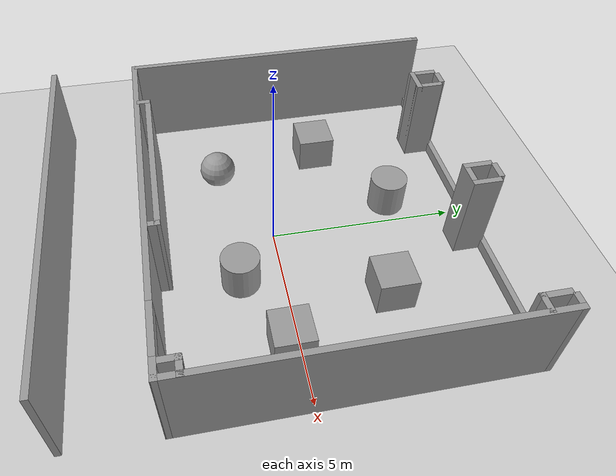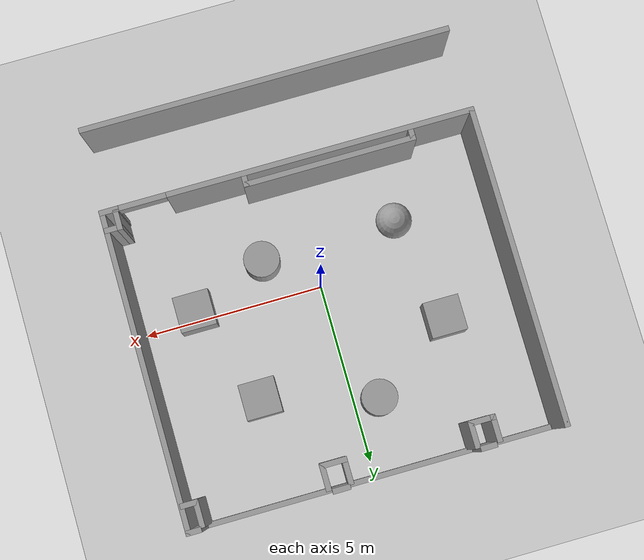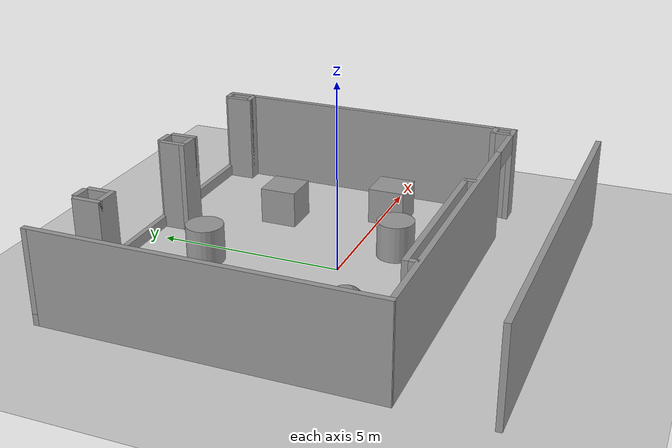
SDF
<sdf version="1.7">
 <world name="default">
  <light name="sun" type="directional">
   <pose>0 0 10 0 -0 0</pose>
   <diffuse>0.8 0.8 0.8 1</diffuse>
   <specular>0.2 0.2 0.2 1</specular>
   <attenuation>
    <range>1000</range>
    <constant>0.9</constant>
    <linear>0.01</linear>
    <quadratic>0.001</quadratic>
   </attenuation>
   <direction>-0.5 0.1 -0.9</direction>
   <spot><inner_angle>0</inner_angle><outer_angle>0</outer_angle><falloff>0</falloff></spot>
  </light>
  <model name="ground_plane">
   <static>1</static>
   <link name="link">
    <collision name="collision">
     <geometry><plane><normal>0 0 1</normal><size>100 100</size></plane></geometry>
     <surface>
      <contact><collide_bitmask>65535</collide_bitmask></contact>
      <friction><ode><mu>100</mu><mu2>50</mu2></ode></friction>
     </surface>
    </collision>
    <visual name="visual">
     <cast_shadows>0</cast_shadows>
     <geometry><plane><normal>0 0 1</normal><size>100 100</size></plane></geometry>
     <material>
      <script><uri>file://media/materials/scripts/gazebo.material</uri><name>Gazebo/Grey</name></script>
     </material>
    </visual>
   </link>
  </model>
  <gravity>0 0 -9.8</gravity>
  <magnetic_field>6e-06 2.3e-05 -4.2e-05</magnetic_field>
  <atmosphere type="adiabatic"/>
  <physics type="ode">
   <max_step_size>0.001</max_step_size>
   <real_time_factor>1</real_time_factor>
   <real_time_update_rate>1000</real_time_update_rate>
  </physics>
  <scene><ambient>0.4 0.4 0.4 1</ambient><background>0.7 0.7 0.7 1</background><shadows>1</shadows></scene>
  <spherical_coordinates>
   <surface_model>EARTH_WGS84</surface_model>
   <latitude_deg>0</latitude_deg>
   <longitude_deg>0</longitude_deg>
   <elevation>0</elevation>
   <heading_deg>0</heading_deg>
  </spherical_coordinates>
  <model name="labmap">
   <link name="Wall_21">
    <pose>-5.08606 1.15108 0 0 0 -1.5708</pose>
    <visual name="Wall_21_Visual">
     <pose>0 0 1.25 0 -0 0</pose>
     <geometry><box><size>8.81401 0.15 2.5</size></box></geometry>
     <material>
      <script><uri>file://media/materials/scripts/gazebo.material</uri><name>Gazebo/Grey</name></script>
      <ambient>1 1 1 1</ambient>
      <shader type="pixel"/>
     </material>
     <meta><layer>0</layer></meta>
    </visual>
    <collision name="Wall_21_Collision">
     <pose>0 0 1.25 0 -0 0</pose>
     <geometry><box><size>8.81401 0.15 2.5</size></box></geometry>
     <surface>
      <friction>
       <ode><mu>1</mu><mu2>1</mu2><fdir1>0 0 0</fdir1><slip1>0</slip1><slip2>0</slip2></ode>
       <torsional>
        <coefficient>1</coefficient>
        <patch_radius>0</patch_radius>
        <surface_radius>0</surface_radius>
        <use_patch_radius>1</use_patch_radius>
        <ode><slip>0</slip></ode>
       </torsional>
      </friction>
      <bounce><restitution_coefficient>0</restitution_coefficient><threshold>1e+06</threshold></bounce>
      <contact>
       <collide_without_contact>0</collide_without_contact>
       <collide_without_contact_bitmask>1</collide_without_contact_bitmask>
       <collide_bitmask>1</collide_bitmask>
       <ode>
        <soft_cfm>0</soft_cfm>
        <soft_erp>0.2</soft_erp>
        <kp>1e+13</kp>
        <kd>1</kd>
        <max_vel>0.01</max_vel>
        <min_depth>0</min_depth>
       </ode>
       <bullet>
        <split_impulse>1</split_impulse>
        <split_impulse_penetration_threshold>-0.01</split_impulse_penetration_threshold>
        <soft_cfm>0</soft_cfm>
        <soft_erp>0.2</soft_erp>
        <kp>1e+13</kp>
        <kd>1</kd>
       </bullet>
      </contact>
     </surface>
    </collision>
   </link>
   <link name="Wall_22">
    <pose>5.8e-05 -3.182 0 0 0 -0.000211</pose>
    <visual name="Wall_22_Visual_0">
     <pose>-0.914908 0 1.25 0 -0 0</pose>
     <geometry><box><size>8.49243 0.15 2.5</size></box></geometry>
     <material>
      <script><uri>file://media/materials/scripts/gazebo.material</uri><name>Gazebo/Grey</name></script>
      <ambient>1 1 1 1</ambient>
      <shader type="pixel"/>
     </material>
     <meta><layer>0</layer></meta>
    </visual>
    <visual name="Wall_22_Visual_1">
     <pose>4.89621 0 1.25 0 -0 0</pose>
     <geometry><box><size>0.529817 0.15 2.5</size></box></geometry>
     <material>
      <script><uri>file://media/materials/scripts/gazebo.material</uri><name>Gazebo/Grey</name></script>
      <ambient>1 1 1 1</ambient>
      <shader type="pixel"/>
     </material>
     <meta><layer>0</layer></meta>
    </visual>
    <visual name="Wall_22_Visual_2">
     <pose>3.9813 0 2.25 0 -0 0</pose>
     <geometry><box><size>1.3 0.15 0.5</size></box></geometry>
     <material>
      <script><uri>file://media/materials/scripts/gazebo.material</uri><name>Gazebo/Grey</name></script>
      <ambient>1 1 1 1</ambient>
      <shader type="pixel"/>
     </material>
     <meta><layer>0</layer></meta>
    </visual>
    <collision name="Wall_22_Collision_0">
     <pose>-0.914908 0 1.25 0 -0 0</pose>
     <geometry><box><size>8.49243 0.15 2.5</size></box></geometry>
     <surface>
      <friction>
       <ode><mu>1</mu><mu2>1</mu2><fdir1>0 0 0</fdir1><slip1>0</slip1><slip2>0</slip2></ode>
       <torsional>
        <coefficient>1</coefficient>
        <patch_radius>0</patch_radius>
        <surface_radius>0</surface_radius>
        <use_patch_radius>1</use_patch_radius>
        <ode><slip>0</slip></ode>
       </torsional>
      </friction>
      <bounce><restitution_coefficient>0</restitution_coefficient><threshold>1e+06</threshold></bounce>
      <contact>
       <collide_without_contact>0</collide_without_contact>
       <collide_without_contact_bitmask>1</collide_without_contact_bitmask>
       <collide_bitmask>1</collide_bitmask>
       <ode>
        <soft_cfm>0</soft_cfm>
        <soft_erp>0.2</soft_erp>
        <kp>1e+13</kp>
        <kd>1</kd>
        <max_vel>0.01</max_vel>
        <min_depth>0</min_depth>
       </ode>
       <bullet>
        <split_impulse>1</split_impulse>
        <split_impulse_penetration_threshold>-0.01</split_impulse_penetration_threshold>
        <soft_cfm>0</soft_cfm>
        <soft_erp>0.2</soft_erp>
        <kp>1e+13</kp>
        <kd>1</kd>
       </bullet>
      </contact>
     </surface>
    </collision>
    <collision name="Wall_22_Collision_2">
     <pose>3.9813 0 2.25 0 -0 0</pose>
     <geometry><box><size>1.3 0.15 0.5</size></box></geometry>
     <surface>
      <friction>
       <ode><mu>1</mu><mu2>1</mu2><fdir1>0 0 0</fdir1><slip1>0</slip1><slip2>0</slip2></ode>
       <torsional>
        <coefficient>1</coefficient>
        <patch_radius>0</patch_radius>
        <surface_radius>0</surface_radius>
        <use_patch_radius>1</use_patch_radius>
        <ode><slip>0</slip></ode>
       </torsional>
      </friction>
      <bounce><restitution_coefficient>0</restitution_coefficient><threshold>1e+06</threshold></bounce>
      <contact>
       <collide_without_contact>0</collide_without_contact>
       <collide_without_contact_bitmask>1</collide_without_contact_bitmask>
       <collide_bitmask>1</collide_bitmask>
       <ode>
        <soft_cfm>0</soft_cfm>
        <soft_erp>0.2</soft_erp>
        <kp>1e+13</kp>
        <kd>1</kd>
        <max_vel>0.01</max_vel>
        <min_depth>0</min_depth>
       </ode>
       <bullet>
        <split_impulse>1</split_impulse>
        <split_impulse_penetration_threshold>-0.01</split_impulse_penetration_threshold>
        <soft_cfm>0</soft_cfm>
        <soft_erp>0.2</soft_erp>
        <kp>1e+13</kp>
        <kd>1</kd>
       </bullet>
      </contact>
     </surface>
    </collision>
    <collision name="Wall_22_Collision_1">
     <pose>4.89621 0 1.25 0 -0 0</pose>
     <geometry><box><size>0.529817 0.15 2.5</size></box></geometry>
     <surface>
      <friction>
       <ode><mu>1</mu><mu2>1</mu2><fdir1>0 0 0</fdir1><slip1>0</slip1><slip2>0</slip2></ode>
       <torsional>
        <coefficient>1</coefficient>
        <patch_radius>0</patch_radius>
        <surface_radius>0</surface_radius>
        <use_patch_radius>1</use_patch_radius>
        <ode><slip>0</slip></ode>
       </torsional>
      </friction>
      <bounce><restitution_coefficient>0</restitution_coefficient><threshold>1e+06</threshold></bounce>
      <contact>
       <collide_without_contact>0</collide_without_contact>
       <collide_without_contact_bitmask>1</collide_without_contact_bitmask>
       <collide_bitmask>1</collide_bitmask>
       <ode>
        <soft_cfm>0</soft_cfm>
        <soft_erp>0.2</soft_erp>
        <kp>1e+13</kp>
        <kd>1</kd>
        <max_vel>0.01</max_vel>
        <min_depth>0</min_depth>
       </ode>
       <bullet>
        <split_impulse>1</split_impulse>
        <split_impulse_penetration_threshold>-0.01</split_impulse_penetration_threshold>
        <soft_cfm>0</soft_cfm>
        <soft_erp>0.2</soft_erp>
        <kp>1e+13</kp>
        <kd>1</kd>
       </bullet>
      </contact>
     </surface>
    </collision>
   </link>
   <link name="Wall_23">
    <pose>5.08606 1.15108 0 0 -0 1.57082</pose>
    <visual name="Wall_23_Visual">
     <pose>0 0 1.25 0 -0 0</pose>
     <geometry><box><size>8.814 0.15 2.5</size></box></geometry>
     <material>
      <script><uri>file://media/materials/scripts/gazebo.material</uri><name>Gazebo/Grey</name></script>
      <ambient>1 1 1 1</ambient>
      <shader type="pixel"/>
     </material>
     <meta><layer>0</layer></meta>
    </visual>
    <collision name="Wall_23_Collision">
     <pose>0 0 1.25 0 -0 0</pose>
     <geometry><box><size>8.814 0.15 2.5</size></box></geometry>
     <surface>
      <friction>
       <ode><mu>1</mu><mu2>1</mu2><fdir1>0 0 0</fdir1><slip1>0</slip1><slip2>0</slip2></ode>
       <torsional>
        <coefficient>1</coefficient>
        <patch_radius>0</patch_radius>
        <surface_radius>0</surface_radius>
        <use_patch_radius>1</use_patch_radius>
        <ode><slip>0</slip></ode>
       </torsional>
      </friction>
      <bounce><restitution_coefficient>0</restitution_coefficient><threshold>1e+06</threshold></bounce>
      <contact>
       <collide_without_contact>0</collide_without_contact>
       <collide_without_contact_bitmask>1</collide_without_contact_bitmask>
       <collide_bitmask>1</collide_bitmask>
       <ode>
        <soft_cfm>0</soft_cfm>
        <soft_erp>0.2</soft_erp>
        <kp>1e+13</kp>
        <kd>1</kd>
        <max_vel>0.01</max_vel>
        <min_depth>0</min_depth>
       </ode>
       <bullet>
        <split_impulse>1</split_impulse>
        <split_impulse_penetration_threshold>-0.01</split_impulse_penetration_threshold>
        <soft_cfm>0</soft_cfm>
        <soft_erp>0.2</soft_erp>
        <kp>1e+13</kp>
        <kd>1</kd>
       </bullet>
      </contact>
     </surface>
    </collision>
   </link>
   <link name="Wall_24">
    <pose>-6.3e-05 5.48308 0 0 -0 3.14159</pose>
    <visual name="Wall_24_Visual_0">
     <pose>-4.94843 0 1.25 0 -0 0</pose>
     <geometry><box><size>0.425403 0.15 2.5</size></box></geometry>
     <material>
      <script><uri>file://media/materials/scripts/gazebo.material</uri><name>Gazebo/Grey</name></script>
      <ambient>1 1 1 1</ambient>
      <shader type="pixel"/>
     </material>
     <meta><layer>0</layer></meta>
    </visual>
    <visual name="Wall_24_Visual_1">
     <pose>0.212701 0 0.15 0 -0 0</pose>
     <geometry><box><size>9.89686 0.15 0.3</size></box></geometry>
     <material>
      <script><uri>file://media/materials/scripts/gazebo.material</uri><name>Gazebo/Grey</name></script>
      <ambient>1 1 1 1</ambient>
      <shader type="pixel"/>
     </material>
     <meta><layer>0</layer></meta>
    </visual>
    <visual name="Wall_24_Visual_2">
     <pose>-0.993384 0 1.4 0 -0 0</pose>
     <geometry><box><size>0.484693 0.15 2.2</size></box></geometry>
     <material>
      <script><uri>file://media/materials/scripts/gazebo.material</uri><name>Gazebo/Grey</name></script>
      <ambient>1 1 1 1</ambient>
      <shader type="pixel"/>
     </material>
     <meta><layer>0</layer></meta>
    </visual>
    <visual name="Wall_24_Visual_3">
     <pose>2.97383 0 1.4 0 -0 0</pose>
     <geometry><box><size>0.449737 0.15 2.2</size></box></geometry>
     <material>
      <script><uri>file://media/materials/scripts/gazebo.material</uri><name>Gazebo/Grey</name></script>
      <ambient>1 1 1 1</ambient>
      <shader type="pixel"/>
     </material>
     <meta><layer>0</layer></meta>
    </visual>
    <visual name="Wall_24_Visual_4">
     <pose>5.12992 0 1.4 0 -0 0</pose>
     <geometry><box><size>0.062433 0.15 2.2</size></box></geometry>
     <material>
      <script><uri>file://media/materials/scripts/gazebo.material</uri><name>Gazebo/Grey</name></script>
      <ambient>1 1 1 1</ambient>
      <shader type="pixel"/>
     </material>
     <meta><layer>0</layer></meta>
    </visual>
    <collision name="Wall_24_Collision_0">
     <pose>-4.94843 0 1.25 0 -0 0</pose>
     <geometry><box><size>0.425403 0.15 2.5</size></box></geometry>
     <surface>
      <friction>
       <ode><mu>1</mu><mu2>1</mu2><fdir1>0 0 0</fdir1><slip1>0</slip1><slip2>0</slip2></ode>
       <torsional>
        <coefficient>1</coefficient>
        <patch_radius>0</patch_radius>
        <surface_radius>0</surface_radius>
        <use_patch_radius>1</use_patch_radius>
        <ode><slip>0</slip></ode>
       </torsional>
      </friction>
      <bounce><restitution_coefficient>0</restitution_coefficient><threshold>1e+06</threshold></bounce>
      <contact>
       <collide_without_contact>0</collide_without_contact>
       <collide_without_contact_bitmask>1</collide_without_contact_bitmask>
       <collide_bitmask>1</collide_bitmask>
       <ode>
        <soft_cfm>0</soft_cfm>
        <soft_erp>0.2</soft_erp>
        <kp>1e+13</kp>
        <kd>1</kd>
        <max_vel>0.01</max_vel>
        <min_depth>0</min_depth>
       </ode>
       <bullet>
        <split_impulse>1</split_impulse>
        <split_impulse_penetration_threshold>-0.01</split_impulse_penetration_threshold>
        <soft_cfm>0</soft_cfm>
        <soft_erp>0.2</soft_erp>
        <kp>1e+13</kp>
        <kd>1</kd>
       </bullet>
      </contact>
     </surface>
    </collision>
    <collision name="Wall_24_Collision_1">
     <pose>0.212701 0 0.15 0 -0 0</pose>
     <geometry><box><size>9.89686 0.15 0.3</size></box></geometry>
     <surface>
      <friction>
       <ode><mu>1</mu><mu2>1</mu2><fdir1>0 0 0</fdir1><slip1>0</slip1><slip2>0</slip2></ode>
       <torsional>
        <coefficient>1</coefficient>
        <patch_radius>0</patch_radius>
        <surface_radius>0</surface_radius>
        <use_patch_radius>1</use_patch_radius>
        <ode><slip>0</slip></ode>
       </torsional>
      </friction>
      <bounce><restitution_coefficient>0</restitution_coefficient><threshold>1e+06</threshold></bounce>
      <contact>
       <collide_without_contact>0</collide_without_contact>
       <collide_without_contact_bitmask>1</collide_without_contact_bitmask>
       <collide_bitmask>1</collide_bitmask>
       <ode>
        <soft_cfm>0</soft_cfm>
        <soft_erp>0.2</soft_erp>
        <kp>1e+13</kp>
        <kd>1</kd>
        <max_vel>0.01</max_vel>
        <min_depth>0</min_depth>
       </ode>
       <bullet>
        <split_impulse>1</split_impulse>
        <split_impulse_penetration_threshold>-0.01</split_impulse_penetration_threshold>
        <soft_cfm>0</soft_cfm>
        <soft_erp>0.2</soft_erp>
        <kp>1e+13</kp>
        <kd>1</kd>
       </bullet>
      </contact>
     </surface>
    </collision>
    <collision name="Wall_24_Collision_2">
     <pose>-0.993384 0 1.4 0 -0 0</pose>
     <geometry><box><size>0.484693 0.15 2.2</size></box></geometry>
     <surface>
      <friction>
       <ode><mu>1</mu><mu2>1</mu2><fdir1>0 0 0</fdir1><slip1>0</slip1><slip2>0</slip2></ode>
       <torsional>
        <coefficient>1</coefficient>
        <patch_radius>0</patch_radius>
        <surface_radius>0</surface_radius>
        <use_patch_radius>1</use_patch_radius>
        <ode><slip>0</slip></ode>
       </torsional>
      </friction>
      <bounce><restitution_coefficient>0</restitution_coefficient><threshold>1e+06</threshold></bounce>
      <contact>
       <collide_without_contact>0</collide_without_contact>
       <collide_without_contact_bitmask>1</collide_without_contact_bitmask>
       <collide_bitmask>1</collide_bitmask>
       <ode>
        <soft_cfm>0</soft_cfm>
        <soft_erp>0.2</soft_erp>
        <kp>1e+13</kp>
        <kd>1</kd>
        <max_vel>0.01</max_vel>
        <min_depth>0</min_depth>
       </ode>
       <bullet>
        <split_impulse>1</split_impulse>
        <split_impulse_penetration_threshold>-0.01</split_impulse_penetration_threshold>
        <soft_cfm>0</soft_cfm>
        <soft_erp>0.2</soft_erp>
        <kp>1e+13</kp>
        <kd>1</kd>
       </bullet>
      </contact>
     </surface>
    </collision>
    <collision name="Wall_24_Collision_3">
     <pose>2.97383 0 1.4 0 -0 0</pose>
     <geometry><box><size>0.449737 0.15 2.2</size></box></geometry>
     <surface>
      <friction>
       <ode><mu>1</mu><mu2>1</mu2><fdir1>0 0 0</fdir1><slip1>0</slip1><slip2>0</slip2></ode>
       <torsional>
        <coefficient>1</coefficient>
        <patch_radius>0</patch_radius>
        <surface_radius>0</surface_radius>
        <use_patch_radius>1</use_patch_radius>
        <ode><slip>0</slip></ode>
       </torsional>
      </friction>
      <bounce><restitution_coefficient>0</restitution_coefficient><threshold>1e+06</threshold></bounce>
      <contact>
       <collide_without_contact>0</collide_without_contact>
       <collide_without_contact_bitmask>1</collide_without_contact_bitmask>
       <collide_bitmask>1</collide_bitmask>
       <ode>
        <soft_cfm>0</soft_cfm>
        <soft_erp>0.2</soft_erp>
        <kp>1e+13</kp>
        <kd>1</kd>
        <max_vel>0.01</max_vel>
        <min_depth>0</min_depth>
       </ode>
       <bullet>
        <split_impulse>1</split_impulse>
        <split_impulse_penetration_threshold>-0.01</split_impulse_penetration_threshold>
        <soft_cfm>0</soft_cfm>
        <soft_erp>0.2</soft_erp>
        <kp>1e+13</kp>
        <kd>1</kd>
       </bullet>
      </contact>
     </surface>
    </collision>
    <collision name="Wall_24_Collision_4">
     <pose>5.12992 0 1.4 0 -0 0</pose>
     <geometry><box><size>0.062433 0.15 2.2</size></box></geometry>
     <surface>
      <friction>
       <ode><mu>1</mu><mu2>1</mu2><fdir1>0 0 0</fdir1><slip1>0</slip1><slip2>0</slip2></ode>
       <torsional>
        <coefficient>1</coefficient>
        <patch_radius>0</patch_radius>
        <surface_radius>0</surface_radius>
        <use_patch_radius>1</use_patch_radius>
        <ode><slip>0</slip></ode>
       </torsional>
      </friction>
      <bounce><restitution_coefficient>0</restitution_coefficient><threshold>1e+06</threshold></bounce>
      <contact>
       <collide_without_contact>0</collide_without_contact>
       <collide_without_contact_bitmask>1</collide_without_contact_bitmask>
       <collide_bitmask>1</collide_bitmask>
       <ode>
        <soft_cfm>0</soft_cfm>
        <soft_erp>0.2</soft_erp>
        <kp>1e+13</kp>
        <kd>1</kd>
        <max_vel>0.01</max_vel>
        <min_depth>0</min_depth>
       </ode>
       <bullet>
        <split_impulse>1</split_impulse>
        <split_impulse_penetration_threshold>-0.01</split_impulse_penetration_threshold>
        <soft_cfm>0</soft_cfm>
        <soft_erp>0.2</soft_erp>
        <kp>1e+13</kp>
        <kd>1</kd>
       </bullet>
      </contact>
     </surface>
    </collision>
   </link>
   <link name="Wall_26">
    <pose>-0.018431 -5.48308 0 0 -0 0</pose>
    <visual name="Wall_26_Visual">
     <pose>0 0 1.25 0 -0 0</pose>
     <geometry><box><size>10.25 0.15 2.5</size></box></geometry>
     <material>
      <script><uri>file://media/materials/scripts/gazebo.material</uri><name>Gazebo/Grey</name></script>
      <ambient>1 1 1 1</ambient>
      <shader type="pixel"/>
     </material>
     <meta><layer>0</layer></meta>
    </visual>
    <collision name="Wall_26_Collision">
     <pose>0 0 1.25 0 -0 0</pose>
     <geometry><box><size>10.25 0.15 2.5</size></box></geometry>
     <surface>
      <friction>
       <ode><mu>1</mu><mu2>1</mu2><fdir1>0 0 0</fdir1><slip1>0</slip1><slip2>0</slip2></ode>
       <torsional>
        <coefficient>1</coefficient>
        <patch_radius>0</patch_radius>
        <surface_radius>0</surface_radius>
        <use_patch_radius>1</use_patch_radius>
        <ode><slip>0</slip></ode>
       </torsional>
      </friction>
      <bounce><restitution_coefficient>0</restitution_coefficient><threshold>1e+06</threshold></bounce>
      <contact>
       <collide_without_contact>0</collide_without_contact>
       <collide_without_contact_bitmask>1</collide_without_contact_bitmask>
       <collide_bitmask>1</collide_bitmask>
       <ode>
        <soft_cfm>0</soft_cfm>
        <soft_erp>0.2</soft_erp>
        <kp>1e+13</kp>
        <kd>1</kd>
        <max_vel>0.01</max_vel>
        <min_depth>0</min_depth>
       </ode>
       <bullet>
        <split_impulse>1</split_impulse>
        <split_impulse_penetration_threshold>-0.01</split_impulse_penetration_threshold>
        <soft_cfm>0</soft_cfm>
        <soft_erp>0.2</soft_erp>
        <kp>1e+13</kp>
        <kd>1</kd>
       </bullet>
      </contact>
     </surface>
    </collision>
   </link>
   <link name="Wall_28">
    <pose>-3.37506 -2.99417 0 0 -0 1.5708</pose>
    <visual name="Wall_28_Visual">
     <pose>0 0 1.25 0 -0 0</pose>
     <geometry><box><size>0.3575 0.15 2.5</size></box></geometry>
     <material>
      <script><uri>file://media/materials/scripts/gazebo.material</uri><name>Gazebo/Grey</name></script>
      <ambient>1 1 1 1</ambient>
      <shader type="pixel"/>
     </material>
     <meta><layer>0</layer></meta>
    </visual>
    <collision name="Wall_28_Collision">
     <pose>0 0 1.25 0 -0 0</pose>
     <geometry><box><size>0.3575 0.15 2.5</size></box></geometry>
     <surface>
      <friction>
       <ode><mu>1</mu><mu2>1</mu2><fdir1>0 0 0</fdir1><slip1>0</slip1><slip2>0</slip2></ode>
       <torsional>
        <coefficient>1</coefficient>
        <patch_radius>0</patch_radius>
        <surface_radius>0</surface_radius>
        <use_patch_radius>1</use_patch_radius>
        <ode><slip>0</slip></ode>
       </torsional>
      </friction>
      <bounce><restitution_coefficient>0</restitution_coefficient><threshold>1e+06</threshold></bounce>
      <contact>
       <collide_without_contact>0</collide_without_contact>
       <collide_without_contact_bitmask>1</collide_without_contact_bitmask>
       <collide_bitmask>1</collide_bitmask>
       <ode>
        <soft_cfm>0</soft_cfm>
        <soft_erp>0.2</soft_erp>
        <kp>1e+13</kp>
        <kd>1</kd>
        <max_vel>0.01</max_vel>
        <min_depth>0</min_depth>
       </ode>
       <bullet>
        <split_impulse>1</split_impulse>
        <split_impulse_penetration_threshold>-0.01</split_impulse_penetration_threshold>
        <soft_cfm>0</soft_cfm>
        <soft_erp>0.2</soft_erp>
        <kp>1e+13</kp>
        <kd>1</kd>
       </bullet>
      </contact>
     </surface>
    </collision>
   </link>
   <link name="Wall_29">
    <pose>-1.07756 -2.87892 0 0 -0 0</pose>
    <visual name="Wall_29_Visual">
     <pose>0 0 1.25 0 -0 0</pose>
     <geometry><box><size>4.745 0.15 2.5</size></box></geometry>
     <material>
      <script><uri>file://media/materials/scripts/gazebo.material</uri><name>Gazebo/Grey</name></script>
      <ambient>1 1 1 1</ambient>
      <shader type="pixel"/>
     </material>
     <meta><layer>0</layer></meta>
    </visual>
    <collision name="Wall_29_Collision">
     <pose>0 0 1.25 0 -0 0</pose>
     <geometry><box><size>4.745 0.15 2.5</size></box></geometry>
     <surface>
      <friction>
       <ode><mu>1</mu><mu2>1</mu2><fdir1>0 0 0</fdir1><slip1>0</slip1><slip2>0</slip2></ode>
       <torsional>
        <coefficient>1</coefficient>
        <patch_radius>0</patch_radius>
        <surface_radius>0</surface_radius>
        <use_patch_radius>1</use_patch_radius>
        <ode><slip>0</slip></ode>
       </torsional>
      </friction>
      <bounce><restitution_coefficient>0</restitution_coefficient><threshold>1e+06</threshold></bounce>
      <contact>
       <collide_without_contact>0</collide_without_contact>
       <collide_without_contact_bitmask>1</collide_without_contact_bitmask>
       <collide_bitmask>1</collide_bitmask>
       <ode>
        <soft_cfm>0</soft_cfm>
        <soft_erp>0.2</soft_erp>
        <kp>1e+13</kp>
        <kd>1</kd>
        <max_vel>0.01</max_vel>
        <min_depth>0</min_depth>
       </ode>
       <bullet>
        <split_impulse>1</split_impulse>
        <split_impulse_penetration_threshold>-0.01</split_impulse_penetration_threshold>
        <soft_cfm>0</soft_cfm>
        <soft_erp>0.2</soft_erp>
        <kp>1e+13</kp>
        <kd>1</kd>
       </bullet>
      </contact>
     </surface>
    </collision>
   </link>
   <link name="Wall_30">
    <pose>1.22006 -2.98849 0 0 0 -1.56951</pose>
    <visual name="Wall_30_Visual">
     <pose>0 0 1.25 0 -0 0</pose>
     <geometry><box><size>0.346126 0.15 2.5</size></box></geometry>
     <material>
      <script><uri>file://media/materials/scripts/gazebo.material</uri><name>Gazebo/Grey</name></script>
      <ambient>1 1 1 1</ambient>
      <shader type="pixel"/>
     </material>
     <meta><layer>0</layer></meta>
    </visual>
    <collision name="Wall_30_Collision">
     <pose>0 0 1.25 0 -0 0</pose>
     <geometry><box><size>0.346126 0.15 2.5</size></box></geometry>
     <surface>
      <friction>
       <ode><mu>1</mu><mu2>1</mu2><fdir1>0 0 0</fdir1><slip1>0</slip1><slip2>0</slip2></ode>
       <torsional>
        <coefficient>1</coefficient>
        <patch_radius>0</patch_radius>
        <surface_radius>0</surface_radius>
        <use_patch_radius>1</use_patch_radius>
        <ode><slip>0</slip></ode>
       </torsional>
      </friction>
      <bounce><restitution_coefficient>0</restitution_coefficient><threshold>1e+06</threshold></bounce>
      <contact>
       <collide_without_contact>0</collide_without_contact>
       <collide_without_contact_bitmask>1</collide_without_contact_bitmask>
       <collide_bitmask>1</collide_bitmask>
       <ode>
        <soft_cfm>0</soft_cfm>
        <soft_erp>0.2</soft_erp>
        <kp>1e+13</kp>
        <kd>1</kd>
        <max_vel>0.01</max_vel>
        <min_depth>0</min_depth>
       </ode>
       <bullet>
        <split_impulse>1</split_impulse>
        <split_impulse_penetration_threshold>-0.01</split_impulse_penetration_threshold>
        <soft_cfm>0</soft_cfm>
        <soft_erp>0.2</soft_erp>
        <kp>1e+13</kp>
        <kd>1</kd>
       </bullet>
      </contact>
     </surface>
    </collision>
   </link>
   <link name="Wall_32">
    <pose>-3.29185 5.08001 0 0 0 -1.5708</pose>
    <visual name="Wall_32_Visual">
     <pose>0 0 1.25 0 -0 0</pose>
     <geometry><box><size>0.75 0.15 2.5</size></box></geometry>
     <material>
      <script><uri>file://media/materials/scripts/gazebo.material</uri><name>Gazebo/Grey</name></script>
      <ambient>1 1 1 1</ambient>
      <shader type="pixel"/>
     </material>
     <meta><layer>0</layer></meta>
    </visual>
    <collision name="Wall_32_Collision">
     <pose>0 0 1.25 0 -0 0</pose>
     <geometry><box><size>0.75 0.15 2.5</size></box></geometry>
     <surface>
      <friction>
       <ode><mu>1</mu><mu2>1</mu2><fdir1>0 0 0</fdir1><slip1>0</slip1><slip2>0</slip2></ode>
       <torsional>
        <coefficient>1</coefficient>
        <patch_radius>0</patch_radius>
        <surface_radius>0</surface_radius>
        <use_patch_radius>1</use_patch_radius>
        <ode><slip>0</slip></ode>
       </torsional>
      </friction>
      <bounce><restitution_coefficient>0</restitution_coefficient><threshold>1e+06</threshold></bounce>
      <contact>
       <collide_without_contact>0</collide_without_contact>
       <collide_without_contact_bitmask>1</collide_without_contact_bitmask>
       <collide_bitmask>1</collide_bitmask>
       <ode>
        <soft_cfm>0</soft_cfm>
        <soft_erp>0.2</soft_erp>
        <kp>1e+13</kp>
        <kd>1</kd>
        <max_vel>0.01</max_vel>
        <min_depth>0</min_depth>
       </ode>
       <bullet>
        <split_impulse>1</split_impulse>
        <split_impulse_penetration_threshold>-0.01</split_impulse_penetration_threshold>
        <soft_cfm>0</soft_cfm>
        <soft_erp>0.2</soft_erp>
        <kp>1e+13</kp>
        <kd>1</kd>
       </bullet>
      </contact>
     </surface>
    </collision>
   </link>
   <link name="Wall_33">
    <pose>-2.99185 4.78001 0 0 -0 0</pose>
    <visual name="Wall_33_Visual">
     <pose>0 0 1.25 0 -0 0</pose>
     <geometry><box><size>0.75 0.15 2.5</size></box></geometry>
     <material>
      <script><uri>file://media/materials/scripts/gazebo.material</uri><name>Gazebo/Grey</name></script>
      <ambient>1 1 1 1</ambient>
      <shader type="pixel"/>
     </material>
     <meta><layer>0</layer></meta>
    </visual>
    <collision name="Wall_33_Collision">
     <pose>0 0 1.25 0 -0 0</pose>
     <geometry><box><size>0.75 0.15 2.5</size></box></geometry>
     <surface>
      <friction>
       <ode><mu>1</mu><mu2>1</mu2><fdir1>0 0 0</fdir1><slip1>0</slip1><slip2>0</slip2></ode>
       <torsional>
        <coefficient>1</coefficient>
        <patch_radius>0</patch_radius>
        <surface_radius>0</surface_radius>
        <use_patch_radius>1</use_patch_radius>
        <ode><slip>0</slip></ode>
       </torsional>
      </friction>
      <bounce><restitution_coefficient>0</restitution_coefficient><threshold>1e+06</threshold></bounce>
      <contact>
       <collide_without_contact>0</collide_without_contact>
       <collide_without_contact_bitmask>1</collide_without_contact_bitmask>
       <collide_bitmask>1</collide_bitmask>
       <ode>
        <soft_cfm>0</soft_cfm>
        <soft_erp>0.2</soft_erp>
        <kp>1e+13</kp>
        <kd>1</kd>
        <max_vel>0.01</max_vel>
        <min_depth>0</min_depth>
       </ode>
       <bullet>
        <split_impulse>1</split_impulse>
        <split_impulse_penetration_threshold>-0.01</split_impulse_penetration_threshold>
        <soft_cfm>0</soft_cfm>
        <soft_erp>0.2</soft_erp>
        <kp>1e+13</kp>
        <kd>1</kd>
       </bullet>
      </contact>
     </surface>
    </collision>
   </link>
   <link name="Wall_34">
    <pose>-2.69185 5.08001 0 0 -0 1.5708</pose>
    <visual name="Wall_34_Visual">
     <pose>0 0 1.25 0 -0 0</pose>
     <geometry><box><size>0.75 0.15 2.5</size></box></geometry>
     <material>
      <script><uri>file://media/materials/scripts/gazebo.material</uri><name>Gazebo/Grey</name></script>
      <ambient>1 1 1 1</ambient>
      <shader type="pixel"/>
     </material>
     <meta><layer>0</layer></meta>
    </visual>
    <collision name="Wall_34_Collision">
     <pose>0 0 1.25 0 -0 0</pose>
     <geometry><box><size>0.75 0.15 2.5</size></box></geometry>
     <surface>
      <friction>
       <ode><mu>1</mu><mu2>1</mu2><fdir1>0 0 0</fdir1><slip1>0</slip1><slip2>0</slip2></ode>
       <torsional>
        <coefficient>1</coefficient>
        <patch_radius>0</patch_radius>
        <surface_radius>0</surface_radius>
        <use_patch_radius>1</use_patch_radius>
        <ode><slip>0</slip></ode>
       </torsional>
      </friction>
      <bounce><restitution_coefficient>0</restitution_coefficient><threshold>1e+06</threshold></bounce>
      <contact>
       <collide_without_contact>0</collide_without_contact>
       <collide_without_contact_bitmask>1</collide_without_contact_bitmask>
       <collide_bitmask>1</collide_bitmask>
       <ode>
        <soft_cfm>0</soft_cfm>
        <soft_erp>0.2</soft_erp>
        <kp>1e+13</kp>
        <kd>1</kd>
        <max_vel>0.01</max_vel>
        <min_depth>0</min_depth>
       </ode>
       <bullet>
        <split_impulse>1</split_impulse>
        <split_impulse_penetration_threshold>-0.01</split_impulse_penetration_threshold>
        <soft_cfm>0</soft_cfm>
        <soft_erp>0.2</soft_erp>
        <kp>1e+13</kp>
        <kd>1</kd>
       </bullet>
      </contact>
     </surface>
    </collision>
   </link>
   <link name="Wall_36">
    <pose>0.716143 5.07429 0 0 0 -1.5708</pose>
    <visual name="Wall_36_Visual">
     <pose>0 0 1.25 0 -0 0</pose>
     <geometry><box><size>0.75 0.15 2.5</size></box></geometry>
     <material>
      <script><uri>file://media/materials/scripts/gazebo.material</uri><name>Gazebo/Grey</name></script>
      <ambient>1 1 1 1</ambient>
      <shader type="pixel"/>
     </material>
     <meta><layer>0</layer></meta>
    </visual>
    <collision name="Wall_36_Collision">
     <pose>0 0 1.25 0 -0 0</pose>
     <geometry><box><size>0.75 0.15 2.5</size></box></geometry>
     <surface>
      <friction>
       <ode><mu>1</mu><mu2>1</mu2><fdir1>0 0 0</fdir1><slip1>0</slip1><slip2>0</slip2></ode>
       <torsional>
        <coefficient>1</coefficient>
        <patch_radius>0</patch_radius>
        <surface_radius>0</surface_radius>
        <use_patch_radius>1</use_patch_radius>
        <ode><slip>0</slip></ode>
       </torsional>
      </friction>
      <bounce><restitution_coefficient>0</restitution_coefficient><threshold>1e+06</threshold></bounce>
      <contact>
       <collide_without_contact>0</collide_without_contact>
       <collide_without_contact_bitmask>1</collide_without_contact_bitmask>
       <collide_bitmask>1</collide_bitmask>
       <ode>
        <soft_cfm>0</soft_cfm>
        <soft_erp>0.2</soft_erp>
        <kp>1e+13</kp>
        <kd>1</kd>
        <max_vel>0.01</max_vel>
        <min_depth>0</min_depth>
       </ode>
       <bullet>
        <split_impulse>1</split_impulse>
        <split_impulse_penetration_threshold>-0.01</split_impulse_penetration_threshold>
        <soft_cfm>0</soft_cfm>
        <soft_erp>0.2</soft_erp>
        <kp>1e+13</kp>
        <kd>1</kd>
       </bullet>
      </contact>
     </surface>
    </collision>
   </link>
   <link name="Wall_37">
    <pose>1.01614 4.77429 0 0 -0 0</pose>
    <visual name="Wall_37_Visual">
     <pose>0 0 1.25 0 -0 0</pose>
     <geometry><box><size>0.75 0.15 2.5</size></box></geometry>
     <material>
      <script><uri>file://media/materials/scripts/gazebo.material</uri><name>Gazebo/Grey</name></script>
      <ambient>1 1 1 1</ambient>
      <shader type="pixel"/>
     </material>
     <meta><layer>0</layer></meta>
    </visual>
    <collision name="Wall_37_Collision">
     <pose>0 0 1.25 0 -0 0</pose>
     <geometry><box><size>0.75 0.15 2.5</size></box></geometry>
     <surface>
      <friction>
       <ode><mu>1</mu><mu2>1</mu2><fdir1>0 0 0</fdir1><slip1>0</slip1><slip2>0</slip2></ode>
       <torsional>
        <coefficient>1</coefficient>
        <patch_radius>0</patch_radius>
        <surface_radius>0</surface_radius>
        <use_patch_radius>1</use_patch_radius>
        <ode><slip>0</slip></ode>
       </torsional>
      </friction>
      <bounce><restitution_coefficient>0</restitution_coefficient><threshold>1e+06</threshold></bounce>
      <contact>
       <collide_without_contact>0</collide_without_contact>
       <collide_without_contact_bitmask>1</collide_without_contact_bitmask>
       <collide_bitmask>1</collide_bitmask>
       <ode>
        <soft_cfm>0</soft_cfm>
        <soft_erp>0.2</soft_erp>
        <kp>1e+13</kp>
        <kd>1</kd>
        <max_vel>0.01</max_vel>
        <min_depth>0</min_depth>
       </ode>
       <bullet>
        <split_impulse>1</split_impulse>
        <split_impulse_penetration_threshold>-0.01</split_impulse_penetration_threshold>
        <soft_cfm>0</soft_cfm>
        <soft_erp>0.2</soft_erp>
        <kp>1e+13</kp>
        <kd>1</kd>
       </bullet>
      </contact>
     </surface>
    </collision>
   </link>
   <link name="Wall_38">
    <pose>1.31614 5.07429 0 0 -0 1.5708</pose>
    <visual name="Wall_38_Visual">
     <pose>0 0 1.25 0 -0 0</pose>
     <geometry><box><size>0.75 0.15 2.5</size></box></geometry>
     <material>
      <script><uri>file://media/materials/scripts/gazebo.material</uri><name>Gazebo/Grey</name></script>
      <ambient>1 1 1 1</ambient>
      <shader type="pixel"/>
     </material>
     <meta><layer>0</layer></meta>
    </visual>
    <collision name="Wall_38_Collision">
     <pose>0 0 1.25 0 -0 0</pose>
     <geometry><box><size>0.75 0.15 2.5</size></box></geometry>
     <surface>
      <friction>
       <ode><mu>1</mu><mu2>1</mu2><fdir1>0 0 0</fdir1><slip1>0</slip1><slip2>0</slip2></ode>
       <torsional>
        <coefficient>1</coefficient>
        <patch_radius>0</patch_radius>
        <surface_radius>0</surface_radius>
        <use_patch_radius>1</use_patch_radius>
        <ode><slip>0</slip></ode>
       </torsional>
      </friction>
      <bounce><restitution_coefficient>0</restitution_coefficient><threshold>1e+06</threshold></bounce>
      <contact>
       <collide_without_contact>0</collide_without_contact>
       <collide_without_contact_bitmask>1</collide_without_contact_bitmask>
       <collide_bitmask>1</collide_bitmask>
       <ode>
        <soft_cfm>0</soft_cfm>
        <soft_erp>0.2</soft_erp>
        <kp>1e+13</kp>
        <kd>1</kd>
        <max_vel>0.01</max_vel>
        <min_depth>0</min_depth>
       </ode>
       <bullet>
        <split_impulse>1</split_impulse>
        <split_impulse_penetration_threshold>-0.01</split_impulse_penetration_threshold>
        <soft_cfm>0</soft_cfm>
        <soft_erp>0.2</soft_erp>
        <kp>1e+13</kp>
        <kd>1</kd>
       </bullet>
      </contact>
     </surface>
    </collision>
   </link>
   <link name="Wall_40">
    <pose>4.69555 5.07715 0 0 0 -1.5708</pose>
    <visual name="Wall_40_Visual">
     <pose>0 0 1.25 0 -0 0</pose>
     <geometry><box><size>0.75 0.15 2.5</size></box></geometry>
     <material>
      <script><uri>file://media/materials/scripts/gazebo.material</uri><name>Gazebo/Grey</name></script>
      <ambient>1 1 1 1</ambient>
      <shader type="pixel"/>
     </material>
     <meta><layer>0</layer></meta>
    </visual>
    <collision name="Wall_40_Collision">
     <pose>0 0 1.25 0 -0 0</pose>
     <geometry><box><size>0.75 0.15 2.5</size></box></geometry>
     <surface>
      <friction>
       <ode><mu>1</mu><mu2>1</mu2><fdir1>0 0 0</fdir1><slip1>0</slip1><slip2>0</slip2></ode>
       <torsional>
        <coefficient>1</coefficient>
        <patch_radius>0</patch_radius>
        <surface_radius>0</surface_radius>
        <use_patch_radius>1</use_patch_radius>
        <ode><slip>0</slip></ode>
       </torsional>
      </friction>
      <bounce><restitution_coefficient>0</restitution_coefficient><threshold>1e+06</threshold></bounce>
      <contact>
       <collide_without_contact>0</collide_without_contact>
       <collide_without_contact_bitmask>1</collide_without_contact_bitmask>
       <collide_bitmask>1</collide_bitmask>
       <ode>
        <soft_cfm>0</soft_cfm>
        <soft_erp>0.2</soft_erp>
        <kp>1e+13</kp>
        <kd>1</kd>
        <max_vel>0.01</max_vel>
        <min_depth>0</min_depth>
       </ode>
       <bullet>
        <split_impulse>1</split_impulse>
        <split_impulse_penetration_threshold>-0.01</split_impulse_penetration_threshold>
        <soft_cfm>0</soft_cfm>
        <soft_erp>0.2</soft_erp>
        <kp>1e+13</kp>
        <kd>1</kd>
       </bullet>
      </contact>
     </surface>
    </collision>
   </link>
   <link name="Wall_41">
    <pose>4.87055 4.77715 0 0 -0 0</pose>
    <visual name="Wall_41_Visual">
     <pose>0 0 1.25 0 -0 0</pose>
     <geometry><box><size>0.5 0.15 2.5</size></box></geometry>
     <material>
      <script><uri>file://media/materials/scripts/gazebo.material</uri><name>Gazebo/Grey</name></script>
      <ambient>1 1 1 1</ambient>
      <shader type="pixel"/>
     </material>
     <meta><layer>0</layer></meta>
    </visual>
    <collision name="Wall_41_Collision">
     <pose>0 0 1.25 0 -0 0</pose>
     <geometry><box><size>0.5 0.15 2.5</size></box></geometry>
     <surface>
      <friction>
       <ode><mu>1</mu><mu2>1</mu2><fdir1>0 0 0</fdir1><slip1>0</slip1><slip2>0</slip2></ode>
       <torsional>
        <coefficient>1</coefficient>
        <patch_radius>0</patch_radius>
        <surface_radius>0</surface_radius>
        <use_patch_radius>1</use_patch_radius>
        <ode><slip>0</slip></ode>
       </torsional>
      </friction>
      <bounce><restitution_coefficient>0</restitution_coefficient><threshold>1e+06</threshold></bounce>
      <contact>
       <collide_without_contact>0</collide_without_contact>
       <collide_without_contact_bitmask>1</collide_without_contact_bitmask>
       <collide_bitmask>1</collide_bitmask>
       <ode>
        <soft_cfm>0</soft_cfm>
        <soft_erp>0.2</soft_erp>
        <kp>1e+13</kp>
        <kd>1</kd>
        <max_vel>0.01</max_vel>
        <min_depth>0</min_depth>
       </ode>
       <bullet>
        <split_impulse>1</split_impulse>
        <split_impulse_penetration_threshold>-0.01</split_impulse_penetration_threshold>
        <soft_cfm>0</soft_cfm>
        <soft_erp>0.2</soft_erp>
        <kp>1e+13</kp>
        <kd>1</kd>
       </bullet>
      </contact>
     </surface>
    </collision>
   </link>
   <link name="Wall_44">
    <pose>4.72943 -2.89341 0 0 -0 1.5708</pose>
    <visual name="Wall_44_Visual">
     <pose>0 0 1.25 0 -0 0</pose>
     <geometry><box><size>0.55804 0.15 2.5</size></box></geometry>
     <material>
      <script><uri>file://media/materials/scripts/gazebo.material</uri><name>Gazebo/Grey</name></script>
      <ambient>1 1 1 1</ambient>
      <shader type="pixel"/>
     </material>
     <meta><layer>0</layer></meta>
    </visual>
    <collision name="Wall_44_Collision">
     <pose>0 0 1.25 0 -0 0</pose>
     <geometry><box><size>0.55804 0.15 2.5</size></box></geometry>
     <surface>
      <friction>
       <ode><mu>1</mu><mu2>1</mu2><fdir1>0 0 0</fdir1><slip1>0</slip1><slip2>0</slip2></ode>
       <torsional>
        <coefficient>1</coefficient>
        <patch_radius>0</patch_radius>
        <surface_radius>0</surface_radius>
        <use_patch_radius>1</use_patch_radius>
        <ode><slip>0</slip></ode>
       </torsional>
      </friction>
      <bounce><restitution_coefficient>0</restitution_coefficient><threshold>1e+06</threshold></bounce>
      <contact>
       <collide_without_contact>0</collide_without_contact>
       <collide_without_contact_bitmask>1</collide_without_contact_bitmask>
       <collide_bitmask>1</collide_bitmask>
       <ode>
        <soft_cfm>0</soft_cfm>
        <soft_erp>0.2</soft_erp>
        <kp>1e+13</kp>
        <kd>1</kd>
        <max_vel>0.01</max_vel>
        <min_depth>0</min_depth>
       </ode>
       <bullet>
        <split_impulse>1</split_impulse>
        <split_impulse_penetration_threshold>-0.01</split_impulse_penetration_threshold>
        <soft_cfm>0</soft_cfm>
        <soft_erp>0.2</soft_erp>
        <kp>1e+13</kp>
        <kd>1</kd>
       </bullet>
      </contact>
     </surface>
    </collision>
   </link>
   <link name="Wall_45">
    <pose>4.90228 -2.6894 0 0 -0 0</pose>
    <visual name="Wall_45_Visual">
     <pose>0 0 1.25 0 -0 0</pose>
     <geometry><box><size>0.5 0.15 2.5</size></box></geometry>
     <material>
      <script><uri>file://media/materials/scripts/gazebo.material</uri><name>Gazebo/Grey</name></script>
      <ambient>1 1 1 1</ambient>
      <shader type="pixel"/>
     </material>
     <meta><layer>0</layer></meta>
    </visual>
    <collision name="Wall_45_Collision">
     <pose>0 0 1.25 0 -0 0</pose>
     <geometry><box><size>0.5 0.15 2.5</size></box></geometry>
     <surface>
      <friction>
       <ode><mu>1</mu><mu2>1</mu2><fdir1>0 0 0</fdir1><slip1>0</slip1><slip2>0</slip2></ode>
       <torsional>
        <coefficient>1</coefficient>
        <patch_radius>0</patch_radius>
        <surface_radius>0</surface_radius>
        <use_patch_radius>1</use_patch_radius>
        <ode><slip>0</slip></ode>
       </torsional>
      </friction>
      <bounce><restitution_coefficient>0</restitution_coefficient><threshold>1e+06</threshold></bounce>
      <contact>
       <collide_without_contact>0</collide_without_contact>
       <collide_without_contact_bitmask>1</collide_without_contact_bitmask>
       <collide_bitmask>1</collide_bitmask>
       <ode>
        <soft_cfm>0</soft_cfm>
        <soft_erp>0.2</soft_erp>
        <kp>1e+13</kp>
        <kd>1</kd>
        <max_vel>0.01</max_vel>
        <min_depth>0</min_depth>
       </ode>
       <bullet>
        <split_impulse>1</split_impulse>
        <split_impulse_penetration_threshold>-0.01</split_impulse_penetration_threshold>
        <soft_cfm>0</soft_cfm>
        <soft_erp>0.2</soft_erp>
        <kp>1e+13</kp>
        <kd>1</kd>
       </bullet>
      </contact>
     </surface>
    </collision>
   </link>
   <static>1</static>
   <pose>-0.00035 -0.03479 0 0 -0 0</pose>
  </model>
  <model name="model">
   <link name="link_0">
    <inertial>
     <mass>1</mass>
     <inertia><ixx>0.145833</ixx><ixy>0</ixy><ixz>0</ixz><iyy>0.145833</iyy><iyz>0</iyz><izz>0.125</izz></inertia>
    </inertial>
    <pose>-0.878702 2.53613 0 0 -0 0</pose>
    <visual name="visual">
     <geometry><cylinder><radius>0.5</radius><length>1</length></cylinder></geometry>
     <material>
      <lighting>1</lighting>
      <script><uri>file://media/materials/scripts/gazebo.material</uri><name>Gazebo/Grey</name></script>
      <shader type="pixel"/>
     </material>
    </visual>
    <collision name="collision">
     <geometry><cylinder><radius>0.5</radius><length>1</length></cylinder></geometry>
     <surface>
      <friction>
       <ode><mu>1</mu><mu2>1</mu2><fdir1>0 0 0</fdir1><slip1>0</slip1><slip2>0</slip2></ode>
       <torsional>
        <coefficient>1</coefficient>
        <patch_radius>0</patch_radius>
        <surface_radius>0</surface_radius>
        <use_patch_radius>1</use_patch_radius>
        <ode><slip>0</slip></ode>
       </torsional>
      </friction>
      <bounce><restitution_coefficient>0</restitution_coefficient><threshold>1e+06</threshold></bounce>
      <contact>
       <collide_without_contact>0</collide_without_contact>
       <collide_without_contact_bitmask>1</collide_without_contact_bitmask>
       <collide_bitmask>1</collide_bitmask>
       <ode>
        <soft_cfm>0</soft_cfm>
        <soft_erp>0.2</soft_erp>
        <kp>1e+13</kp>
        <kd>1</kd>
        <max_vel>0.01</max_vel>
        <min_depth>0</min_depth>
       </ode>
       <bullet>
        <split_impulse>1</split_impulse>
        <split_impulse_penetration_threshold>-0.01</split_impulse_penetration_threshold>
        <soft_cfm>0</soft_cfm>
        <soft_erp>0.2</soft_erp>
        <kp>1e+13</kp>
        <kd>1</kd>
       </bullet>
      </contact>
     </surface>
    </collision>
   </link>
   <link name="link_1">
    <inertial>
     <mass>1</mass>
     <inertia>
      <ixx>0.166667</ixx>
      <ixy>0</ixy>
      <ixz>0</ixz>
      <iyy>0.166667</iyy>
      <iyz>0</iyz>
      <izz>0.166667</izz>
     </inertia>
    </inertial>
    <pose>3.31203 -1.09764 0 0 -0 0</pose>
    <visual name="visual">
     <geometry><box><size>1 1 1</size></box></geometry>
     <material>
      <lighting>1</lighting>
      <script><uri>file://media/materials/scripts/gazebo.material</uri><name>Gazebo/Grey</name></script>
      <shader type="pixel"/>
     </material>
    </visual>
    <collision name="collision">
     <geometry><box><size>1 1 1</size></box></geometry>
     <surface>
      <friction>
       <ode><mu>1</mu><mu2>1</mu2><fdir1>0 0 0</fdir1><slip1>0</slip1><slip2>0</slip2></ode>
       <torsional>
        <coefficient>1</coefficient>
        <patch_radius>0</patch_radius>
        <surface_radius>0</surface_radius>
        <use_patch_radius>1</use_patch_radius>
        <ode><slip>0</slip></ode>
       </torsional>
      </friction>
      <bounce><restitution_coefficient>0</restitution_coefficient><threshold>1e+06</threshold></bounce>
      <contact>
       <collide_without_contact>0</collide_without_contact>
       <collide_without_contact_bitmask>1</collide_without_contact_bitmask>
       <collide_bitmask>1</collide_bitmask>
       <ode>
        <soft_cfm>0</soft_cfm>
        <soft_erp>0.2</soft_erp>
        <kp>1e+13</kp>
        <kd>1</kd>
        <max_vel>0.01</max_vel>
        <min_depth>0</min_depth>
       </ode>
       <bullet>
        <split_impulse>1</split_impulse>
        <split_impulse_penetration_threshold>-0.01</split_impulse_penetration_threshold>
        <soft_cfm>0</soft_cfm>
        <soft_erp>0.2</soft_erp>
        <kp>1e+13</kp>
        <kd>1</kd>
       </bullet>
      </contact>
     </surface>
    </collision>
   </link>
   <link name="link_2">
    <inertial>
     <mass>1</mass>
     <inertia>
      <ixx>0.166667</ixx>
      <ixy>0</ixy>
      <ixz>0</ixz>
      <iyy>0.166667</iyy>
      <iyz>0</iyz>
      <izz>0.166667</izz>
     </inertia>
    </inertial>
    <pose>2.22845 1.67856 0 0 -0 0</pose>
    <visual name="visual">
     <geometry><box><size>1 1 1</size></box></geometry>
     <material>
      <lighting>1</lighting>
      <script><uri>file://media/materials/scripts/gazebo.material</uri><name>Gazebo/Grey</name></script>
      <shader type="pixel"/>
     </material>
    </visual>
    <collision name="collision">
     <geometry><box><size>1 1 1</size></box></geometry>
     <surface>
      <friction>
       <ode><mu>1</mu><mu2>1</mu2><fdir1>0 0 0</fdir1><slip1>0</slip1><slip2>0</slip2></ode>
       <torsional>
        <coefficient>1</coefficient>
        <patch_radius>0</patch_radius>
        <surface_radius>0</surface_radius>
        <use_patch_radius>1</use_patch_radius>
        <ode><slip>0</slip></ode>
       </torsional>
      </friction>
      <bounce><restitution_coefficient>0</restitution_coefficient><threshold>1e+06</threshold></bounce>
      <contact>
       <collide_without_contact>0</collide_without_contact>
       <collide_without_contact_bitmask>1</collide_without_contact_bitmask>
       <collide_bitmask>1</collide_bitmask>
       <ode>
        <soft_cfm>0</soft_cfm>
        <soft_erp>0.2</soft_erp>
        <kp>1e+13</kp>
        <kd>1</kd>
        <max_vel>0.01</max_vel>
        <min_depth>0</min_depth>
       </ode>
       <bullet>
        <split_impulse>1</split_impulse>
        <split_impulse_penetration_threshold>-0.01</split_impulse_penetration_threshold>
        <soft_cfm>0</soft_cfm>
        <soft_erp>0.2</soft_erp>
        <kp>1e+13</kp>
        <kd>1</kd>
       </bullet>
      </contact>
     </surface>
    </collision>
   </link>
   <link name="link_3">
    <inertial>
     <mass>1</mass>
     <inertia><ixx>0.1</ixx><ixy>0</ixy><ixz>0</ixz><iyy>0.1</iyy><iyz>0</iyz><izz>0.1</izz></inertia>
    </inertial>
    <pose>-2.63646 -2.0658 0 0 -0 0</pose>
    <visual name="visual">
     <geometry><sphere><radius>0.5</radius></sphere></geometry>
     <material>
      <lighting>1</lighting>
      <script><uri>file://media/materials/scripts/gazebo.material</uri><name>Gazebo/Grey</name></script>
      <shader type="pixel"/>
     </material>
    </visual>
    <collision name="collision">
     <geometry><sphere><radius>0.5</radius></sphere></geometry>
     <surface>
      <friction>
       <ode><mu>1</mu><mu2>1</mu2><fdir1>0 0 0</fdir1><slip1>0</slip1><slip2>0</slip2></ode>
       <torsional>
        <coefficient>1</coefficient>
        <patch_radius>0</patch_radius>
        <surface_radius>0</surface_radius>
        <use_patch_radius>1</use_patch_radius>
        <ode><slip>0</slip></ode>
       </torsional>
      </friction>
      <bounce><restitution_coefficient>0</restitution_coefficient><threshold>1e+06</threshold></bounce>
      <contact>
       <collide_without_contact>0</collide_without_contact>
       <collide_without_contact_bitmask>1</collide_without_contact_bitmask>
       <collide_bitmask>1</collide_bitmask>
       <ode>
        <soft_cfm>0</soft_cfm>
        <soft_erp>0.2</soft_erp>
        <kp>1e+13</kp>
        <kd>1</kd>
        <max_vel>0.01</max_vel>
        <min_depth>0</min_depth>
       </ode>
       <bullet>
        <split_impulse>1</split_impulse>
        <split_impulse_penetration_threshold>-0.01</split_impulse_penetration_threshold>
        <soft_cfm>0</soft_cfm>
        <soft_erp>0.2</soft_erp>
        <kp>1e+13</kp>
        <kd>1</kd>
       </bullet>
      </contact>
     </surface>
    </collision>
   </link>
   <link name="link_4">
    <inertial>
     <mass>1</mass>
     <inertia><ixx>0.145833</ixx><ixy>0</ixy><ixz>0</ixz><iyy>0.145833</iyy><iyz>0</iyz><izz>0.125</izz></inertia>
    </inertial>
    <pose>1.17612 -1.96277 0 0 -0 0</pose>
    <visual name="visual">
     <geometry><cylinder><radius>0.5</radius><length>1</length></cylinder></geometry>
     <material>
      <lighting>1</lighting>
      <script><uri>file://media/materials/scripts/gazebo.material</uri><name>Gazebo/Grey</name></script>
      <shader type="pixel"/>
     </material>
    </visual>
    <collision name="collision">
     <geometry><cylinder><radius>0.5</radius><length>1</length></cylinder></geometry>
     <surface>
      <friction>
       <ode><mu>1</mu><mu2>1</mu2><fdir1>0 0 0</fdir1><slip1>0</slip1><slip2>0</slip2></ode>
       <torsional>
        <coefficient>1</coefficient>
        <patch_radius>0</patch_radius>
        <surface_radius>0</surface_radius>
        <use_patch_radius>1</use_patch_radius>
        <ode><slip>0</slip></ode>
       </torsional>
      </friction>
      <bounce><restitution_coefficient>0</restitution_coefficient><threshold>1e+06</threshold></bounce>
      <contact>
       <collide_without_contact>0</collide_without_contact>
       <collide_without_contact_bitmask>1</collide_without_contact_bitmask>
       <collide_bitmask>1</collide_bitmask>
       <ode>
        <soft_cfm>0</soft_cfm>
        <soft_erp>0.2</soft_erp>
        <kp>1e+13</kp>
        <kd>1</kd>
        <max_vel>0.01</max_vel>
        <min_depth>0</min_depth>
       </ode>
       <bullet>
        <split_impulse>1</split_impulse>
        <split_impulse_penetration_threshold>-0.01</split_impulse_penetration_threshold>
        <soft_cfm>0</soft_cfm>
        <soft_erp>0.2</soft_erp>
        <kp>1e+13</kp>
        <kd>1</kd>
       </bullet>
      </contact>
     </surface>
    </collision>
   </link>
   <link name="link_5">
    <inertial>
     <mass>1</mass>
     <inertia>
      <ixx>0.166667</ixx>
      <ixy>0</ixy>
      <ixz>0</ixz>
      <iyy>0.166667</iyy>
      <iyz>0</iyz>
      <izz>0.166667</izz>
     </inertia>
    </inertial>
    <pose>-3.20143 0.911511 0 0 -0 0</pose>
    <visual name="visual">
     <geometry><box><size>1 1 1</size></box></geometry>
     <material>
      <lighting>1</lighting>
      <script><uri>file://media/materials/scripts/gazebo.material</uri><name>Gazebo/Grey</name></script>
      <shader type="pixel"/>
     </material>
    </visual>
    <collision name="collision">
     <geometry><box><size>1 1 1</size></box></geometry>
     <surface>
      <friction>
       <ode><mu>1</mu><mu2>1</mu2><fdir1>0 0 0</fdir1><slip1>0</slip1><slip2>0</slip2></ode>
       <torsional>
        <coefficient>1</coefficient>
        <patch_radius>0</patch_radius>
        <surface_radius>0</surface_radius>
        <use_patch_radius>1</use_patch_radius>
        <ode><slip>0</slip></ode>
       </torsional>
      </friction>
      <bounce><restitution_coefficient>0</restitution_coefficient><threshold>1e+06</threshold></bounce>
      <contact>
       <collide_without_contact>0</collide_without_contact>
       <collide_without_contact_bitmask>1</collide_without_contact_bitmask>
       <collide_bitmask>1</collide_bitmask>
       <ode>
        <soft_cfm>0</soft_cfm>
        <soft_erp>0.2</soft_erp>
        <kp>1e+13</kp>
        <kd>1</kd>
        <max_vel>0.01</max_vel>
        <min_depth>0</min_depth>
       </ode>
       <bullet>
        <split_impulse>1</split_impulse>
        <split_impulse_penetration_threshold>-0.01</split_impulse_penetration_threshold>
        <soft_cfm>0</soft_cfm>
        <soft_erp>0.2</soft_erp>
        <kp>1e+13</kp>
        <kd>1</kd>
       </bullet>
      </contact>
     </surface>
    </collision>
   </link>
   <static>0</static>
   <pose>0.193006 0.870025 0.5 0 -0 0</pose>
  </model>
 </world>
</sdf>
